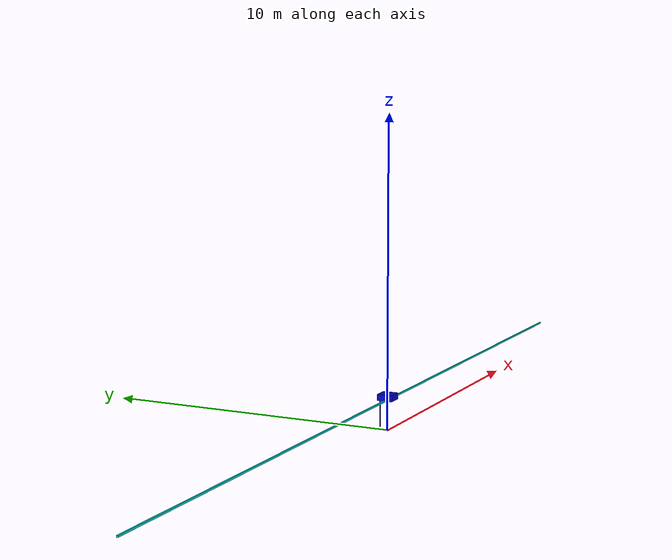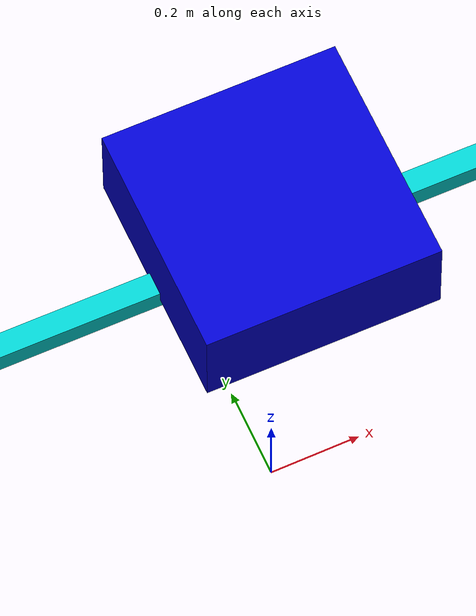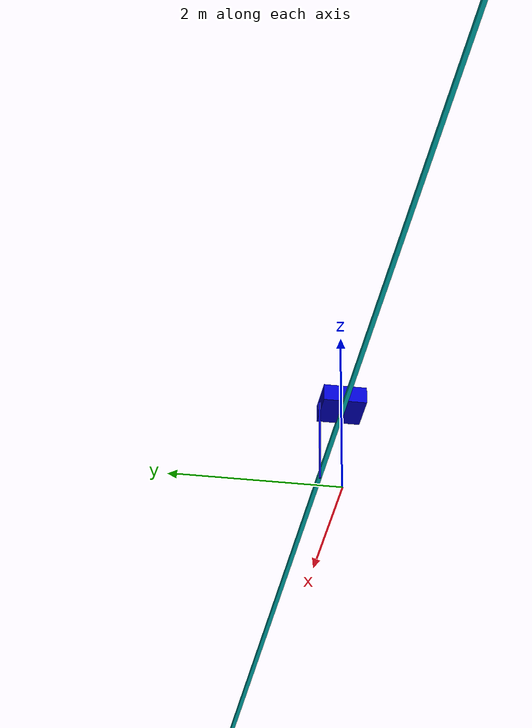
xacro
<?xml version="1.0"?>

<robot xmlns:xacro="http://www.ros.org/wiki/xacro" name="cart_pole">

  <!-- Import RRBot macro -->
  <xacro:include filename="$(find ros2_control_demo_description)/cart_pole/urdf/cart_pole_description.urdf.xacro" />

  <!-- Import RRBot ros2_control description -->
  <xacro:include filename="$(find ros2_control_demo_example_xx)/ros2_control/cart_pole.ros2_control.xacro" />

  <!-- Used for fixing robot -->
  <link name="world"/>

  <xacro:cart_pole_description parent="world"/>

  <xacro:cart_pole_ros2_control/>

  <!-- Import Gazebo Classic definitions + plugin -->
  <xacro:include filename="$(find ros2_control_demo_example_xx)/gazebo/cart_pole.gazebo.xacro" />
  <xacro:cart_pole_gazebo/>

</robot>

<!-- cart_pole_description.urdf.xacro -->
<robot xmlns:xacro="http://www.ros.org/wiki/xacro">

  <xacro:macro name="cart_pole_description" params="parent">
    <xacro:macro name="quadr_block" params="mass width height name">
      <link name="${name}">
        <collision>
          <geometry>
            <box size="${width} ${width} ${height}"/>
          </geometry>
          <origin xyz="0 0 -${height/2}"/>
        </collision>
        <visual>
          <geometry>
            <box size="${width} ${width} ${height}"/>
          </geometry>
          <origin xyz="0 0 -${height/2}"/>
          <material name="blue">
            <color rgba="0 0 .8 1"/>
          </material>
        </visual>
        <inertial>
          <origin xyz="0 0 -${height/2}" rpy="0 0 0"/>
          <mass value="${mass}"/>
          <inertia
            ixx="${mass / 12.0 * (width*width + height*height)}" ixy="0.0" ixz="0.0"
            iyy="${mass / 12.0 * (height*height + width*width)}" iyz="0.0"
            izz="${mass / 12.0 * (width*width + width*width)}"/>
        </inertial>
      </link>
    </xacro:macro>

    <link name="slideBar">
      <visual>
        <geometry>
          <box size="30 0.05 0.05"/>
        </geometry>
        <origin xyz="0 0 0"/>
        <material name="green">
          <color rgba="0 0.8 .8 1"/>
        </material>
      </visual>
      <inertial>
        <mass value="10"/>
        <inertia ixx="1.0" ixy="0.0" ixz="0.0" iyy="1.0" iyz="0.0" izz="1.0"/>
      </inertial>
    </link>

    <xacro:quadr_block name="cart" mass="10" width="0.5" height="0.2"/>

    <xacro:quadr_block name="pendulum" mass="1.1" width="0.02" height="1.0"/>

    <joint name="world_to_base" type="fixed">
      <origin rpy="0 0 0" xyz="0 0 1"/>
      <parent link="${parent}"/>
      <child link="slideBar"/>
    </joint>

    <joint name="slider_to_cart" type="prismatic">
      <axis xyz="1 0 0"/>
      <origin xyz="0.0 0.0 0.2"/>
      <parent link="slideBar"/>
      <child link="cart"/>
      <limit effort="1000.0" lower="-15" upper="15" velocity="50"/>
      <dynamics damping="0.3" friction="0.0"/>
    </joint>

    <joint name="cart_to_pendulum" type="continuous">
      <axis xyz="0 -1 0"/>
      <origin xyz="0.0 0.26 -0.1" rpy="0 0 0"/>
      <parent link="cart"/>
      <child link="pendulum"/>
      <limit effort="10000.0" velocity="100000"/>
      <dynamics damping="0.0" friction="0.0"/>
    </joint>

  </xacro:macro>
</robot>
